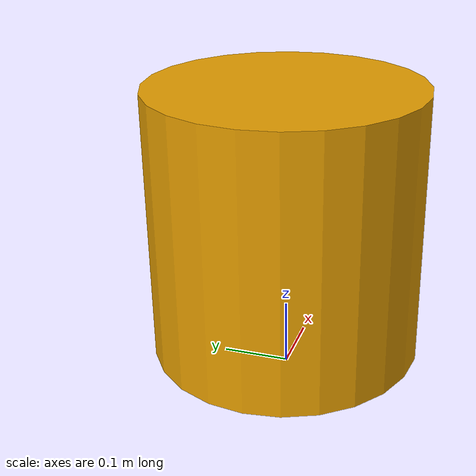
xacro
<?xml version="1.0"?>

<robot name="cylinder_robot" xmlns:xacro="http://ros.org/wiki/xacro">

  <xacro:macro name="cylinder_robot">
    <link name="base_link">
        <visual name="base_visual">
            <origin xyz="0 0 0.24" rpy="0 0 0"/>
            <geometry>
              <cylinder length="0.4" radius="0.2"/>
            </geometry>
        </visual>
        <collision>
            <origin xyz="0 0 0.24" rpy="0 0 0"/>
            <geometry>
              <cylinder length="0.4" radius="0.2"/>
            </geometry>
        </collision>
    </link>
    <gazebo reference="base_link">
        <material value="Gazebo/Red"/>
    </gazebo>
  </xacro:macro>

  <xacro:cylinder_robot/>
</robot>
